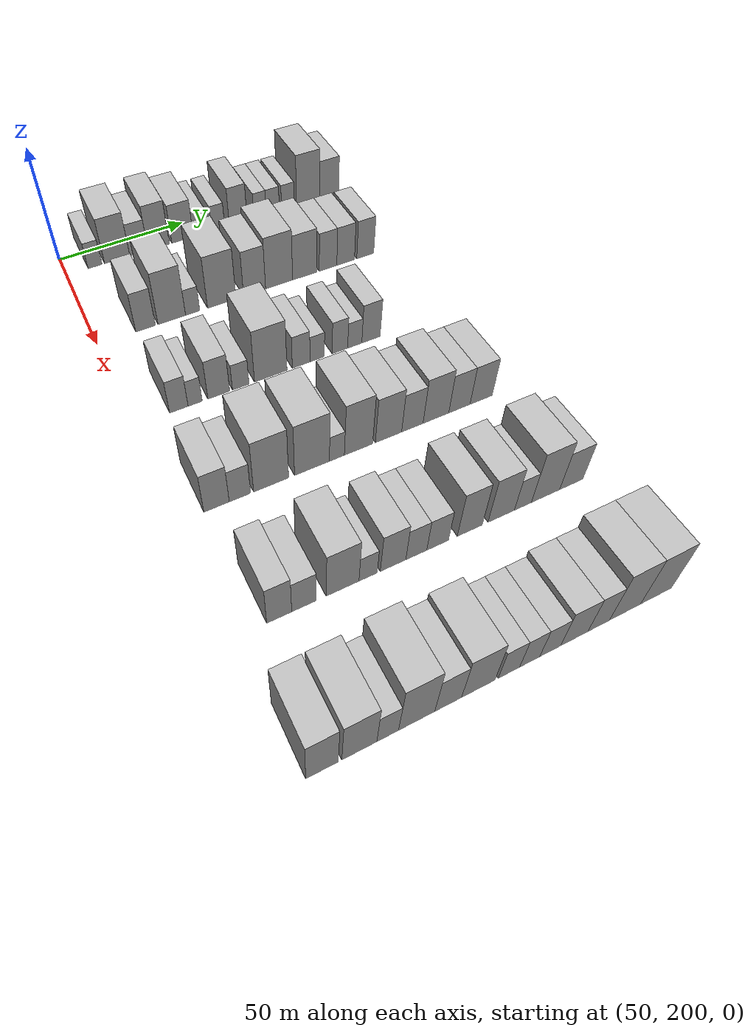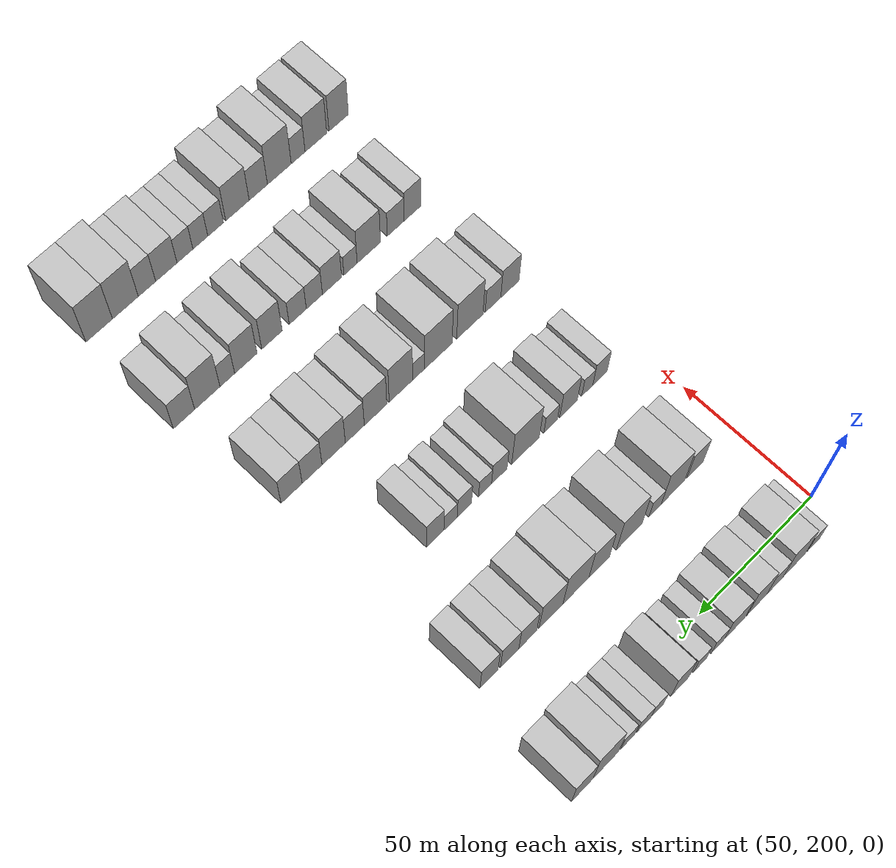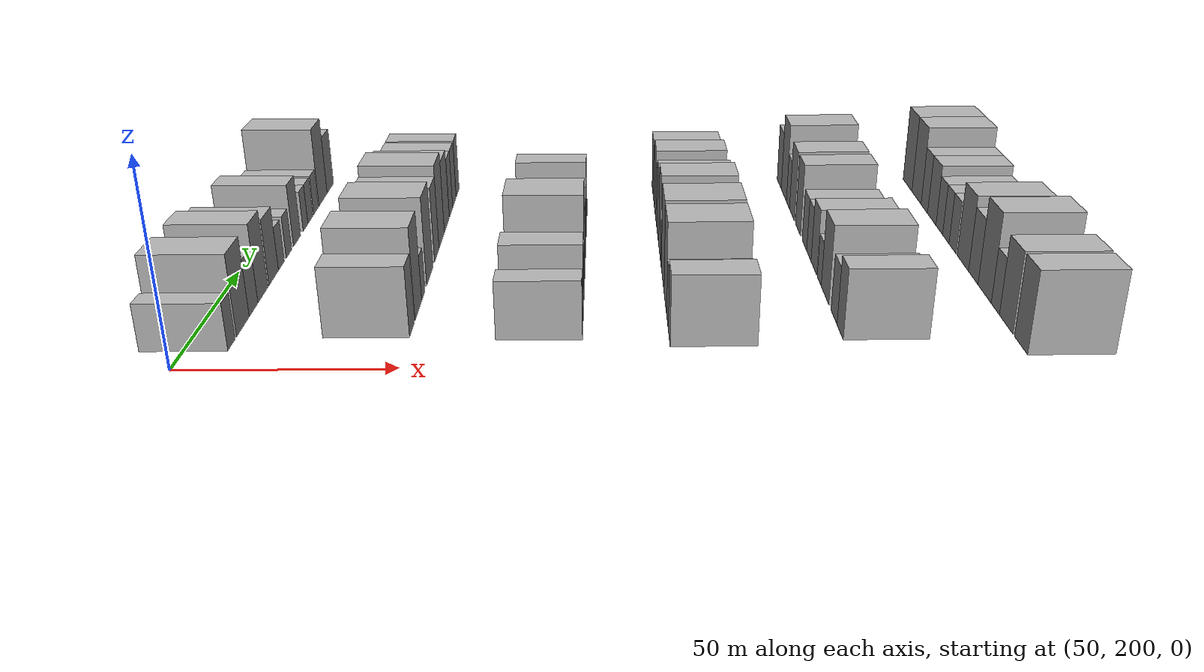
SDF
<sdf version="1.6">
 <world name="default">
  <model name="building_93">
   <static>1</static>
   <pose>50.0000 211.0995 0 0.000000 0.000000 0.000000</pose>
   <link name="link">
    <pose>0 0 6.00 0 0 0</pose>
    <collision name="collision"><geometry><box><size>20.0000 5.4808 12.0000</size></box></geometry></collision>
    <visual name="visual">
     <cast_shadows>0</cast_shadows>
     <geometry><box><size>20.0000 5.4808 12.0000</size></box></geometry>
     <material>
      <script>
       <uri>model://HANNAS_wall/materials/scripts</uri>
       <uri>model://HANNAS_wall/materials/textures</uri>
       <name>vrc/HANNAS_wall</name>
      </script>
     </material>
    </visual>
   </link>
  </model>
  <model name="building_94">
   <static>1</static>
   <pose>50.0000 219.8509 0 0.000000 0.000000 0.000000</pose>
   <link name="link">
    <pose>0 0 10.50 0 0 0</pose>
    <collision name="collision"><geometry><box><size>20.0000 10.0220 21.0000</size></box></geometry></collision>
    <visual name="visual">
     <cast_shadows>0</cast_shadows>
     <geometry><box><size>20.0000 10.0220 21.0000</size></box></geometry>
     <material>
      <script>
       <uri>model://HANNAS_wall/materials/scripts</uri>
       <uri>model://HANNAS_wall/materials/textures</uri>
       <name>vrc/HANNAS_wall</name>
      </script>
     </material>
    </visual>
   </link>
  </model>
  <model name="building_95">
   <static>1</static>
   <pose>50.0000 228.5226 0 0.000000 0.000000 0.000000</pose>
   <link name="link">
    <pose>0 0 7.50 0 0 0</pose>
    <collision name="collision"><geometry><box><size>20.0000 7.3215 15.0000</size></box></geometry></collision>
    <visual name="visual">
     <cast_shadows>0</cast_shadows>
     <geometry><box><size>20.0000 7.3215 15.0000</size></box></geometry>
     <material>
      <script>
       <uri>model://HANNAS_wall/materials/scripts</uri>
       <uri>model://HANNAS_wall/materials/textures</uri>
       <name>vrc/HANNAS_wall</name>
      </script>
     </material>
    </visual>
   </link>
  </model>
  <model name="building_96">
   <static>1</static>
   <pose>50.0000 236.5626 0 0.000000 0.000000 0.000000</pose>
   <link name="link">
    <pose>0 0 10.50 0 0 0</pose>
    <collision name="collision"><geometry><box><size>20.0000 8.7585 21.0000</size></box></geometry></collision>
    <visual name="visual">
     <cast_shadows>0</cast_shadows>
     <geometry><box><size>20.0000 8.7585 21.0000</size></box></geometry>
     <material>
      <script>
       <uri>model://HANNAS_wall/materials/scripts</uri>
       <uri>model://HANNAS_wall/materials/textures</uri>
       <name>vrc/HANNAS_wall</name>
      </script>
     </material>
    </visual>
   </link>
  </model>
  <model name="building_97">
   <static>1</static>
   <pose>50.0000 246.4110 0 0.000000 0.000000 0.000000</pose>
   <link name="link">
    <pose>0 0 9.00 0 0 0</pose>
    <collision name="collision"><geometry><box><size>20.0000 8.9383 18.0000</size></box></geometry></collision>
    <visual name="visual">
     <cast_shadows>0</cast_shadows>
     <geometry><box><size>20.0000 8.9383 18.0000</size></box></geometry>
     <material>
      <script>
       <uri>model://HANNAS_wall/materials/scripts</uri>
       <uri>model://HANNAS_wall/materials/textures</uri>
       <name>vrc/HANNAS_wall</name>
      </script>
     </material>
    </visual>
   </link>
  </model>
  <model name="building_98">
   <static>1</static>
   <pose>50.0000 253.7391 0 0.000000 0.000000 0.000000</pose>
   <link name="link">
    <pose>0 0 6.00 0 0 0</pose>
    <collision name="collision"><geometry><box><size>20.0000 5.7180 12.0000</size></box></geometry></collision>
    <visual name="visual">
     <cast_shadows>0</cast_shadows>
     <geometry><box><size>20.0000 5.7180 12.0000</size></box></geometry>
     <material>
      <script>
       <uri>model://HANNAS_wall/materials/scripts</uri>
       <uri>model://HANNAS_wall/materials/textures</uri>
       <name>vrc/HANNAS_wall</name>
      </script>
     </material>
    </visual>
   </link>
  </model>
  <model name="building_99">
   <static>1</static>
   <pose>50.0000 261.4068 0 0.000000 0.000000 0.000000</pose>
   <link name="link">
    <pose>0 0 6.00 0 0 0</pose>
    <collision name="collision"><geometry><box><size>20.0000 5.6175 12.0000</size></box></geometry></collision>
    <visual name="visual">
     <cast_shadows>0</cast_shadows>
     <geometry><box><size>20.0000 5.6175 12.0000</size></box></geometry>
     <material>
      <script>
       <uri>model://HANNAS_wall/materials/scripts</uri>
       <uri>model://HANNAS_wall/materials/textures</uri>
       <name>vrc/HANNAS_wall</name>
      </script>
     </material>
    </visual>
   </link>
  </model>
  <model name="building_100">
   <static>1</static>
   <pose>50.0000 270.0456 0 0.000000 0.000000 0.000000</pose>
   <link name="link">
    <pose>0 0 9.00 0 0 0</pose>
    <collision name="collision"><geometry><box><size>20.0000 7.6601 18.0000</size></box></geometry></collision>
    <visual name="visual">
     <cast_shadows>0</cast_shadows>
     <geometry><box><size>20.0000 7.6601 18.0000</size></box></geometry>
     <material>
      <script>
       <uri>model://HANNAS_wall/materials/scripts</uri>
       <uri>model://HANNAS_wall/materials/textures</uri>
       <name>vrc/HANNAS_wall</name>
      </script>
     </material>
    </visual>
   </link>
  </model>
  <model name="building_101">
   <static>1</static>
   <pose>50.0000 279.5580 0 0.000000 0.000000 0.000000</pose>
   <link name="link">
    <pose>0 0 6.00 0 0 0</pose>
    <collision name="collision"><geometry><box><size>20.0000 5.3646 12.0000</size></box></geometry></collision>
    <visual name="visual">
     <cast_shadows>0</cast_shadows>
     <geometry><box><size>20.0000 5.3646 12.0000</size></box></geometry>
     <material>
      <script>
       <uri>model://HANNAS_wall/materials/scripts</uri>
       <uri>model://HANNAS_wall/materials/textures</uri>
       <name>vrc/HANNAS_wall</name>
      </script>
     </material>
    </visual>
   </link>
  </model>
  <model name="building_102">
   <static>1</static>
   <pose>50.0000 285.1805 0 0.000000 0.000000 0.000000</pose>
   <link name="link">
    <pose>0 0 6.00 0 0 0</pose>
    <collision name="collision"><geometry><box><size>20.0000 5.8804 12.0000</size></box></geometry></collision>
    <visual name="visual">
     <cast_shadows>0</cast_shadows>
     <geometry><box><size>20.0000 5.8804 12.0000</size></box></geometry>
     <material>
      <script>
       <uri>model://HANNAS_wall/materials/scripts</uri>
       <uri>model://HANNAS_wall/materials/textures</uri>
       <name>vrc/HANNAS_wall</name>
      </script>
     </material>
    </visual>
   </link>
  </model>
  <model name="building_103">
   <static>1</static>
   <pose>50.0000 291.9750 0 0.000000 0.000000 0.000000</pose>
   <link name="link">
    <pose>0 0 6.00 0 0 0</pose>
    <collision name="collision"><geometry><box><size>20.0000 5.7086 12.0000</size></box></geometry></collision>
    <visual name="visual">
     <cast_shadows>0</cast_shadows>
     <geometry><box><size>20.0000 5.7086 12.0000</size></box></geometry>
     <material>
      <script>
       <uri>model://HANNAS_wall/materials/scripts</uri>
       <uri>model://HANNAS_wall/materials/textures</uri>
       <name>vrc/HANNAS_wall</name>
      </script>
     </material>
    </visual>
   </link>
  </model>
  <model name="building_104">
   <static>1</static>
   <pose>50.0000 301.1228 0 0.000000 0.000000 0.000000</pose>
   <link name="link">
    <pose>0 0 12.00 0 0 0</pose>
    <collision name="collision"><geometry><box><size>20.0000 10.5872 24.0000</size></box></geometry></collision>
    <visual name="visual">
     <cast_shadows>0</cast_shadows>
     <geometry><box><size>20.0000 10.5872 24.0000</size></box></geometry>
     <material>
      <script>
       <uri>model://HANNAS_wall/materials/scripts</uri>
       <uri>model://HANNAS_wall/materials/textures</uri>
       <name>vrc/HANNAS_wall</name>
      </script>
     </material>
    </visual>
   </link>
  </model>
  <model name="building_105">
   <static>1</static>
   <pose>50.0000 310.7915 0 0.000000 0.000000 0.000000</pose>
   <link name="link">
    <pose>0 0 9.00 0 0 0</pose>
    <collision name="collision"><geometry><box><size>20.0000 8.7502 18.0000</size></box></geometry></collision>
    <visual name="visual">
     <cast_shadows>0</cast_shadows>
     <geometry><box><size>20.0000 8.7502 18.0000</size></box></geometry>
     <material>
      <script>
       <uri>model://HANNAS_wall/materials/scripts</uri>
       <uri>model://HANNAS_wall/materials/textures</uri>
       <name>vrc/HANNAS_wall</name>
      </script>
     </material>
    </visual>
   </link>
  </model>
  <model name="building_237">
   <static>1</static>
   <pose>90.0000 217.7423 0 0.000000 0.000000 0.000000</pose>
   <link name="link">
    <pose>0 0 9.00 0 0 0</pose>
    <collision name="collision"><geometry><box><size>20.0000 7.2847 18.0000</size></box></geometry></collision>
    <visual name="visual">
     <cast_shadows>0</cast_shadows>
     <geometry><box><size>20.0000 7.2847 18.0000</size></box></geometry>
     <material>
      <script>
       <uri>model://HANNAS_wall/materials/scripts</uri>
       <uri>model://HANNAS_wall/materials/textures</uri>
       <name>vrc/HANNAS_wall</name>
      </script>
     </material>
    </visual>
   </link>
  </model>
  <model name="building_238">
   <static>1</static>
   <pose>90.0000 227.5960 0 0.000000 0.000000 0.000000</pose>
   <link name="link">
    <pose>0 0 12.00 0 0 0</pose>
    <collision name="collision"><geometry><box><size>20.0000 10.4227 24.0000</size></box></geometry></collision>
    <visual name="visual">
     <cast_shadows>0</cast_shadows>
     <geometry><box><size>20.0000 10.4227 24.0000</size></box></geometry>
     <material>
      <script>
       <uri>model://HANNAS_wall/materials/scripts</uri>
       <uri>model://HANNAS_wall/materials/textures</uri>
       <name>vrc/HANNAS_wall</name>
      </script>
     </material>
    </visual>
   </link>
  </model>
  <model name="building_239">
   <static>1</static>
   <pose>90.0000 235.5265 0 0.000000 0.000000 0.000000</pose>
   <link name="link">
    <pose>0 0 6.00 0 0 0</pose>
    <collision name="collision"><geometry><box><size>20.0000 5.4381 12.0000</size></box></geometry></collision>
    <visual name="visual">
     <cast_shadows>0</cast_shadows>
     <geometry><box><size>20.0000 5.4381 12.0000</size></box></geometry>
     <material>
      <script>
       <uri>model://HANNAS_wall/materials/scripts</uri>
       <uri>model://HANNAS_wall/materials/textures</uri>
       <name>vrc/HANNAS_wall</name>
      </script>
     </material>
    </visual>
   </link>
  </model>
  <model name="building_240">
   <static>1</static>
   <pose>90.0000 246.8397 0 0.000000 0.000000 0.000000</pose>
   <link name="link">
    <pose>0 0 12.00 0 0 0</pose>
    <collision name="collision"><geometry><box><size>20.0000 11.1883 24.0000</size></box></geometry></collision>
    <visual name="visual">
     <cast_shadows>0</cast_shadows>
     <geometry><box><size>20.0000 11.1883 24.0000</size></box></geometry>
     <material>
      <script>
       <uri>model://HANNAS_wall/materials/scripts</uri>
       <uri>model://HANNAS_wall/materials/textures</uri>
       <name>vrc/HANNAS_wall</name>
      </script>
     </material>
    </visual>
   </link>
  </model>
  <model name="building_241">
   <static>1</static>
   <pose>90.0000 259.8517 0 0.000000 0.000000 0.000000</pose>
   <link name="link">
    <pose>0 0 10.50 0 0 0</pose>
    <collision name="collision"><geometry><box><size>20.0000 8.8356 21.0000</size></box></geometry></collision>
    <visual name="visual">
     <cast_shadows>0</cast_shadows>
     <geometry><box><size>20.0000 8.8356 21.0000</size></box></geometry>
     <material>
      <script>
       <uri>model://HANNAS_wall/materials/scripts</uri>
       <uri>model://HANNAS_wall/materials/textures</uri>
       <name>vrc/HANNAS_wall</name>
      </script>
     </material>
    </visual>
   </link>
  </model>
  <model name="building_242">
   <static>1</static>
   <pose>90.0000 269.8016 0 0.000000 0.000000 0.000000</pose>
   <link name="link">
    <pose>0 0 12.00 0 0 0</pose>
    <collision name="collision"><geometry><box><size>20.0000 11.0642 24.0000</size></box></geometry></collision>
    <visual name="visual">
     <cast_shadows>0</cast_shadows>
     <geometry><box><size>20.0000 11.0642 24.0000</size></box></geometry>
     <material>
      <script>
       <uri>model://HANNAS_wall/materials/scripts</uri>
       <uri>model://HANNAS_wall/materials/textures</uri>
       <name>vrc/HANNAS_wall</name>
      </script>
     </material>
    </visual>
   </link>
  </model>
  <model name="building_243">
   <static>1</static>
   <pose>90.0000 280.3984 0 0.000000 0.000000 0.000000</pose>
   <link name="link">
    <pose>0 0 10.50 0 0 0</pose>
    <collision name="collision"><geometry><box><size>20.0000 10.1294 21.0000</size></box></geometry></collision>
    <visual name="visual">
     <cast_shadows>0</cast_shadows>
     <geometry><box><size>20.0000 10.1294 21.0000</size></box></geometry>
     <material>
      <script>
       <uri>model://HANNAS_wall/materials/scripts</uri>
       <uri>model://HANNAS_wall/materials/textures</uri>
       <name>vrc/HANNAS_wall</name>
      </script>
     </material>
    </visual>
   </link>
  </model>
  <model name="building_244">
   <static>1</static>
   <pose>90.0000 290.1862 0 0.000000 0.000000 0.000000</pose>
   <link name="link">
    <pose>0 0 9.00 0 0 0</pose>
    <collision name="collision"><geometry><box><size>20.0000 7.4462 18.0000</size></box></geometry></collision>
    <visual name="visual">
     <cast_shadows>0</cast_shadows>
     <geometry><box><size>20.0000 7.4462 18.0000</size></box></geometry>
     <material>
      <script>
       <uri>model://HANNAS_wall/materials/scripts</uri>
       <uri>model://HANNAS_wall/materials/textures</uri>
       <name>vrc/HANNAS_wall</name>
      </script>
     </material>
    </visual>
   </link>
  </model>
  <model name="building_245">
   <static>1</static>
   <pose>90.0000 297.7103 0 0.000000 0.000000 0.000000</pose>
   <link name="link">
    <pose>0 0 9.00 0 0 0</pose>
    <collision name="collision"><geometry><box><size>20.0000 7.6020 18.0000</size></box></geometry></collision>
    <visual name="visual">
     <cast_shadows>0</cast_shadows>
     <geometry><box><size>20.0000 7.6020 18.0000</size></box></geometry>
     <material>
      <script>
       <uri>model://HANNAS_wall/materials/scripts</uri>
       <uri>model://HANNAS_wall/materials/textures</uri>
       <name>vrc/HANNAS_wall</name>
      </script>
     </material>
    </visual>
   </link>
  </model>
  <model name="building_246">
   <static>1</static>
   <pose>90.0000 306.1991 0 0.000000 0.000000 0.000000</pose>
   <link name="link">
    <pose>0 0 9.00 0 0 0</pose>
    <collision name="collision"><geometry><box><size>20.0000 7.3757 18.0000</size></box></geometry></collision>
    <visual name="visual">
     <cast_shadows>0</cast_shadows>
     <geometry><box><size>20.0000 7.3757 18.0000</size></box></geometry>
     <material>
      <script>
       <uri>model://HANNAS_wall/materials/scripts</uri>
       <uri>model://HANNAS_wall/materials/textures</uri>
       <name>vrc/HANNAS_wall</name>
      </script>
     </material>
    </visual>
   </link>
  </model>
  <model name="building_373">
   <static>1</static>
   <pose>130.0000 215.6166 0 0.000000 0.000000 0.000000</pose>
   <link name="link">
    <pose>0 0 7.50 0 0 0</pose>
    <collision name="collision"><geometry><box><size>20.0000 6.4064 15.0000</size></box></geometry></collision>
    <visual name="visual">
     <cast_shadows>0</cast_shadows>
     <geometry><box><size>20.0000 6.4064 15.0000</size></box></geometry>
     <material>
      <script>
       <uri>model://HANNAS_wall/materials/scripts</uri>
       <uri>model://HANNAS_wall/materials/textures</uri>
       <name>vrc/HANNAS_wall</name>
      </script>
     </material>
    </visual>
   </link>
  </model>
  <model name="building_374">
   <static>1</static>
   <pose>130.0000 221.2883 0 0.000000 0.000000 0.000000</pose>
   <link name="link">
    <pose>0 0 6.00 0 0 0</pose>
    <collision name="collision"><geometry><box><size>20.0000 4.9371 12.0000</size></box></geometry></collision>
    <visual name="visual">
     <cast_shadows>0</cast_shadows>
     <geometry><box><size>20.0000 4.9371 12.0000</size></box></geometry>
     <material>
      <script>
       <uri>model://HANNAS_wall/materials/scripts</uri>
       <uri>model://HANNAS_wall/materials/textures</uri>
       <name>vrc/HANNAS_wall</name>
      </script>
     </material>
    </visual>
   </link>
  </model>
  <model name="building_375">
   <static>1</static>
   <pose>130.0000 229.6332 0 0.000000 0.000000 0.000000</pose>
   <link name="link">
    <pose>0 0 9.00 0 0 0</pose>
    <collision name="collision"><geometry><box><size>20.0000 7.7527 18.0000</size></box></geometry></collision>
    <visual name="visual">
     <cast_shadows>0</cast_shadows>
     <geometry><box><size>20.0000 7.7527 18.0000</size></box></geometry>
     <material>
      <script>
       <uri>model://HANNAS_wall/materials/scripts</uri>
       <uri>model://HANNAS_wall/materials/textures</uri>
       <name>vrc/HANNAS_wall</name>
      </script>
     </material>
    </visual>
   </link>
  </model>
  <model name="building_376">
   <static>1</static>
   <pose>130.0000 237.4934 0 0.000000 0.000000 0.000000</pose>
   <link name="link">
    <pose>0 0 6.00 0 0 0</pose>
    <collision name="collision"><geometry><box><size>20.0000 5.9677 12.0000</size></box></geometry></collision>
    <visual name="visual">
     <cast_shadows>0</cast_shadows>
     <geometry><box><size>20.0000 5.9677 12.0000</size></box></geometry>
     <material>
      <script>
       <uri>model://HANNAS_wall/materials/scripts</uri>
       <uri>model://HANNAS_wall/materials/textures</uri>
       <name>vrc/HANNAS_wall</name>
      </script>
     </material>
    </visual>
   </link>
  </model>
  <model name="building_377">
   <static>1</static>
   <pose>130.0000 248.4760 0 0.000000 0.000000 0.000000</pose>
   <link name="link">
    <pose>0 0 12.00 0 0 0</pose>
    <collision name="collision"><geometry><box><size>20.0000 11.9974 24.0000</size></box></geometry></collision>
    <visual name="visual">
     <cast_shadows>0</cast_shadows>
     <geometry><box><size>20.0000 11.9974 24.0000</size></box></geometry>
     <material>
      <script>
       <uri>model://HANNAS_wall/materials/scripts</uri>
       <uri>model://HANNAS_wall/materials/textures</uri>
       <name>vrc/HANNAS_wall</name>
      </script>
     </material>
    </visual>
   </link>
  </model>
  <model name="building_378">
   <static>1</static>
   <pose>130.0000 259.8007 0 0.000000 0.000000 0.000000</pose>
   <link name="link">
    <pose>0 0 7.50 0 0 0</pose>
    <collision name="collision"><geometry><box><size>20.0000 6.6520 15.0000</size></box></geometry></collision>
    <visual name="visual">
     <cast_shadows>0</cast_shadows>
     <geometry><box><size>20.0000 6.6520 15.0000</size></box></geometry>
     <material>
      <script>
       <uri>model://HANNAS_wall/materials/scripts</uri>
       <uri>model://HANNAS_wall/materials/textures</uri>
       <name>vrc/HANNAS_wall</name>
      </script>
     </material>
    </visual>
   </link>
  </model>
  <model name="building_379">
   <static>1</static>
   <pose>130.0000 265.8836 0 0.000000 0.000000 0.000000</pose>
   <link name="link">
    <pose>0 0 6.00 0 0 0</pose>
    <collision name="collision"><geometry><box><size>20.0000 5.5139 12.0000</size></box></geometry></collision>
    <visual name="visual">
     <cast_shadows>0</cast_shadows>
     <geometry><box><size>20.0000 5.5139 12.0000</size></box></geometry>
     <material>
      <script>
       <uri>model://HANNAS_wall/materials/scripts</uri>
       <uri>model://HANNAS_wall/materials/textures</uri>
       <name>vrc/HANNAS_wall</name>
      </script>
     </material>
    </visual>
   </link>
  </model>
  <model name="building_380">
   <static>1</static>
   <pose>130.0000 274.6710 0 0.000000 0.000000 0.000000</pose>
   <link name="link">
    <pose>0 0 7.50 0 0 0</pose>
    <collision name="collision"><geometry><box><size>20.0000 6.0608 15.0000</size></box></geometry></collision>
    <visual name="visual">
     <cast_shadows>0</cast_shadows>
     <geometry><box><size>20.0000 6.0608 15.0000</size></box></geometry>
     <material>
      <script>
       <uri>model://HANNAS_wall/materials/scripts</uri>
       <uri>model://HANNAS_wall/materials/textures</uri>
       <name>vrc/HANNAS_wall</name>
      </script>
     </material>
    </visual>
   </link>
  </model>
  <model name="building_381">
   <static>1</static>
   <pose>130.0000 280.4915 0 0.000000 0.000000 0.000000</pose>
   <link name="link">
    <pose>0 0 6.00 0 0 0</pose>
    <collision name="collision"><geometry><box><size>20.0000 5.5801 12.0000</size></box></geometry></collision>
    <visual name="visual">
     <cast_shadows>0</cast_shadows>
     <geometry><box><size>20.0000 5.5801 12.0000</size></box></geometry>
     <material>
      <script>
       <uri>model://HANNAS_wall/materials/scripts</uri>
       <uri>model://HANNAS_wall/materials/textures</uri>
       <name>vrc/HANNAS_wall</name>
      </script>
     </material>
    </visual>
   </link>
  </model>
  <model name="building_382">
   <static>1</static>
   <pose>130.0000 286.9120 0 0.000000 0.000000 0.000000</pose>
   <link name="link">
    <pose>0 0 9.00 0 0 0</pose>
    <collision name="collision"><geometry><box><size>20.0000 7.2610 18.0000</size></box></geometry></collision>
    <visual name="visual">
     <cast_shadows>0</cast_shadows>
     <geometry><box><size>20.0000 7.2610 18.0000</size></box></geometry>
     <material>
      <script>
       <uri>model://HANNAS_wall/materials/scripts</uri>
       <uri>model://HANNAS_wall/materials/textures</uri>
       <name>vrc/HANNAS_wall</name>
      </script>
     </material>
    </visual>
   </link>
  </model>
  <model name="building_511">
   <static>1</static>
   <pose>170.0000 212.8709 0 0.000000 0.000000 0.000000</pose>
   <link name="link">
    <pose>0 0 9.00 0 0 0</pose>
    <collision name="collision"><geometry><box><size>20.0000 8.1387 18.0000</size></box></geometry></collision>
    <visual name="visual">
     <cast_shadows>0</cast_shadows>
     <geometry><box><size>20.0000 8.1387 18.0000</size></box></geometry>
     <material>
      <script>
       <uri>model://HANNAS_wall/materials/scripts</uri>
       <uri>model://HANNAS_wall/materials/textures</uri>
       <name>vrc/HANNAS_wall</name>
      </script>
     </material>
    </visual>
   </link>
  </model>
  <model name="building_512">
   <static>1</static>
   <pose>170.0000 220.4055 0 0.000000 0.000000 0.000000</pose>
   <link name="link">
    <pose>0 0 7.50 0 0 0</pose>
    <collision name="collision"><geometry><box><size>20.0000 6.9304 15.0000</size></box></geometry></collision>
    <visual name="visual">
     <cast_shadows>0</cast_shadows>
     <geometry><box><size>20.0000 6.9304 15.0000</size></box></geometry>
     <material>
      <script>
       <uri>model://HANNAS_wall/materials/scripts</uri>
       <uri>model://HANNAS_wall/materials/textures</uri>
       <name>vrc/HANNAS_wall</name>
      </script>
     </material>
    </visual>
   </link>
  </model>
  <model name="building_513">
   <static>1</static>
   <pose>170.0000 230.6792 0 0.000000 0.000000 0.000000</pose>
   <link name="link">
    <pose>0 0 12.00 0 0 0</pose>
    <collision name="collision"><geometry><box><size>20.0000 11.6170 24.0000</size></box></geometry></collision>
    <visual name="visual">
     <cast_shadows>0</cast_shadows>
     <geometry><box><size>20.0000 11.6170 24.0000</size></box></geometry>
     <material>
      <script>
       <uri>model://HANNAS_wall/materials/scripts</uri>
       <uri>model://HANNAS_wall/materials/textures</uri>
       <name>vrc/HANNAS_wall</name>
      </script>
     </material>
    </visual>
   </link>
  </model>
  <model name="building_514">
   <static>1</static>
   <pose>170.0000 244.4598 0 0.000000 0.000000 0.000000</pose>
   <link name="link">
    <pose>0 0 12.00 0 0 0</pose>
    <collision name="collision"><geometry><box><size>20.0000 11.9442 24.0000</size></box></geometry></collision>
    <visual name="visual">
     <cast_shadows>0</cast_shadows>
     <geometry><box><size>20.0000 11.9442 24.0000</size></box></geometry>
     <material>
      <script>
       <uri>model://HANNAS_wall/materials/scripts</uri>
       <uri>model://HANNAS_wall/materials/textures</uri>
       <name>vrc/HANNAS_wall</name>
      </script>
     </material>
    </visual>
   </link>
  </model>
  <model name="building_515">
   <static>1</static>
   <pose>170.0000 253.0465 0 0.000000 0.000000 0.000000</pose>
   <link name="link">
    <pose>0 0 6.00 0 0 0</pose>
    <collision name="collision"><geometry><box><size>20.0000 5.2293 12.0000</size></box></geometry></collision>
    <visual name="visual">
     <cast_shadows>0</cast_shadows>
     <geometry><box><size>20.0000 5.2293 12.0000</size></box></geometry>
     <material>
      <script>
       <uri>model://HANNAS_wall/materials/scripts</uri>
       <uri>model://HANNAS_wall/materials/textures</uri>
       <name>vrc/HANNAS_wall</name>
      </script>
     </material>
    </visual>
   </link>
  </model>
  <model name="building_516">
   <static>1</static>
   <pose>170.0000 260.6760 0 0.000000 0.000000 0.000000</pose>
   <link name="link">
    <pose>0 0 12.00 0 0 0</pose>
    <collision name="collision"><geometry><box><size>20.0000 10.0298 24.0000</size></box></geometry></collision>
    <visual name="visual">
     <cast_shadows>0</cast_shadows>
     <geometry><box><size>20.0000 10.0298 24.0000</size></box></geometry>
     <material>
      <script>
       <uri>model://HANNAS_wall/materials/scripts</uri>
       <uri>model://HANNAS_wall/materials/textures</uri>
       <name>vrc/HANNAS_wall</name>
      </script>
     </material>
    </visual>
   </link>
  </model>
  <model name="building_517">
   <static>1</static>
   <pose>170.0000 271.4626 0 0.000000 0.000000 0.000000</pose>
   <link name="link">
    <pose>0 0 10.50 0 0 0</pose>
    <collision name="collision"><geometry><box><size>20.0000 9.5434 21.0000</size></box></geometry></collision>
    <visual name="visual">
     <cast_shadows>0</cast_shadows>
     <geometry><box><size>20.0000 9.5434 21.0000</size></box></geometry>
     <material>
      <script>
       <uri>model://HANNAS_wall/materials/scripts</uri>
       <uri>model://HANNAS_wall/materials/textures</uri>
       <name>vrc/HANNAS_wall</name>
      </script>
     </material>
    </visual>
   </link>
  </model>
  <model name="building_518">
   <static>1</static>
   <pose>170.0000 280.2049 0 0.000000 0.000000 0.000000</pose>
   <link name="link">
    <pose>0 0 9.00 0 0 0</pose>
    <collision name="collision"><geometry><box><size>20.0000 7.9412 18.0000</size></box></geometry></collision>
    <visual name="visual">
     <cast_shadows>0</cast_shadows>
     <geometry><box><size>20.0000 7.9412 18.0000</size></box></geometry>
     <material>
      <script>
       <uri>model://HANNAS_wall/materials/scripts</uri>
       <uri>model://HANNAS_wall/materials/textures</uri>
       <name>vrc/HANNAS_wall</name>
      </script>
     </material>
    </visual>
   </link>
  </model>
  <model name="building_519">
   <static>1</static>
   <pose>170.0000 289.0322 0 0.000000 0.000000 0.000000</pose>
   <link name="link">
    <pose>0 0 10.50 0 0 0</pose>
    <collision name="collision"><geometry><box><size>20.0000 9.7133 21.0000</size></box></geometry></collision>
    <visual name="visual">
     <cast_shadows>0</cast_shadows>
     <geometry><box><size>20.0000 9.7133 21.0000</size></box></geometry>
     <material>
      <script>
       <uri>model://HANNAS_wall/materials/scripts</uri>
       <uri>model://HANNAS_wall/materials/textures</uri>
       <name>vrc/HANNAS_wall</name>
      </script>
     </material>
    </visual>
   </link>
  </model>
  <model name="building_520">
   <static>1</static>
   <pose>170.0000 297.9896 0 0.000000 0.000000 0.000000</pose>
   <link name="link">
    <pose>0 0 9.00 0 0 0</pose>
    <collision name="collision"><geometry><box><size>20.0000 8.2015 18.0000</size></box></geometry></collision>
    <visual name="visual">
     <cast_shadows>0</cast_shadows>
     <geometry><box><size>20.0000 8.2015 18.0000</size></box></geometry>
     <material>
      <script>
       <uri>model://HANNAS_wall/materials/scripts</uri>
       <uri>model://HANNAS_wall/materials/textures</uri>
       <name>vrc/HANNAS_wall</name>
      </script>
     </material>
    </visual>
   </link>
  </model>
  <model name="building_521">
   <static>1</static>
   <pose>170.0000 306.4246 0 0.000000 0.000000 0.000000</pose>
   <link name="link">
    <pose>0 0 9.00 0 0 0</pose>
    <collision name="collision"><geometry><box><size>20.0000 8.6686 18.0000</size></box></geometry></collision>
    <visual name="visual">
     <cast_shadows>0</cast_shadows>
     <geometry><box><size>20.0000 8.6686 18.0000</size></box></geometry>
     <material>
      <script>
       <uri>model://HANNAS_wall/materials/scripts</uri>
       <uri>model://HANNAS_wall/materials/textures</uri>
       <name>vrc/HANNAS_wall</name>
      </script>
     </material>
    </visual>
   </link>
  </model>
  <model name="building_649">
   <static>1</static>
   <pose>210.0000 215.0990 0 0.000000 0.000000 0.000000</pose>
   <link name="link">
    <pose>0 0 9.00 0 0 0</pose>
    <collision name="collision"><geometry><box><size>20.0000 7.4360 18.0000</size></box></geometry></collision>
    <visual name="visual">
     <cast_shadows>0</cast_shadows>
     <geometry><box><size>20.0000 7.4360 18.0000</size></box></geometry>
     <material>
      <script>
       <uri>model://HANNAS_wall/materials/scripts</uri>
       <uri>model://HANNAS_wall/materials/textures</uri>
       <name>vrc/HANNAS_wall</name>
      </script>
     </material>
    </visual>
   </link>
  </model>
  <model name="building_650">
   <static>1</static>
   <pose>210.0000 222.5412 0 0.000000 0.000000 0.000000</pose>
   <link name="link">
    <pose>0 0 7.50 0 0 0</pose>
    <collision name="collision"><geometry><box><size>20.0000 7.4485 15.0000</size></box></geometry></collision>
    <visual name="visual">
     <cast_shadows>0</cast_shadows>
     <geometry><box><size>20.0000 7.4485 15.0000</size></box></geometry>
     <material>
      <script>
       <uri>model://HANNAS_wall/materials/scripts</uri>
       <uri>model://HANNAS_wall/materials/textures</uri>
       <name>vrc/HANNAS_wall</name>
      </script>
     </material>
    </visual>
   </link>
  </model>
  <model name="building_651">
   <static>1</static>
   <pose>210.0000 234.3816 0 0.000000 0.000000 0.000000</pose>
   <link name="link">
    <pose>0 0 10.50 0 0 0</pose>
    <collision name="collision"><geometry><box><size>20.0000 10.2323 21.0000</size></box></geometry></collision>
    <visual name="visual">
     <cast_shadows>0</cast_shadows>
     <geometry><box><size>20.0000 10.2323 21.0000</size></box></geometry>
     <material>
      <script>
       <uri>model://HANNAS_wall/materials/scripts</uri>
       <uri>model://HANNAS_wall/materials/textures</uri>
       <name>vrc/HANNAS_wall</name>
      </script>
     </material>
    </visual>
   </link>
  </model>
  <model name="building_652">
   <static>1</static>
   <pose>210.0000 242.3897 0 0.000000 0.000000 0.000000</pose>
   <link name="link">
    <pose>0 0 6.00 0 0 0</pose>
    <collision name="collision"><geometry><box><size>20.0000 5.7839 12.0000</size></box></geometry></collision>
    <visual name="visual">
     <cast_shadows>0</cast_shadows>
     <geometry><box><size>20.0000 5.7839 12.0000</size></box></geometry>
     <material>
      <script>
       <uri>model://HANNAS_wall/materials/scripts</uri>
       <uri>model://HANNAS_wall/materials/textures</uri>
       <name>vrc/HANNAS_wall</name>
      </script>
     </material>
    </visual>
   </link>
  </model>
  <model name="building_653">
   <static>1</static>
   <pose>210.0000 250.4201 0 0.000000 0.000000 0.000000</pose>
   <link name="link">
    <pose>0 0 9.00 0 0 0</pose>
    <collision name="collision"><geometry><box><size>20.0000 8.2767 18.0000</size></box></geometry></collision>
    <visual name="visual">
     <cast_shadows>0</cast_shadows>
     <geometry><box><size>20.0000 8.2767 18.0000</size></box></geometry>
     <material>
      <script>
       <uri>model://HANNAS_wall/materials/scripts</uri>
       <uri>model://HANNAS_wall/materials/textures</uri>
       <name>vrc/HANNAS_wall</name>
      </script>
     </material>
    </visual>
   </link>
  </model>
  <model name="building_654">
   <static>1</static>
   <pose>210.0000 258.0171 0 0.000000 0.000000 0.000000</pose>
   <link name="link">
    <pose>0 0 7.50 0 0 0</pose>
    <collision name="collision"><geometry><box><size>20.0000 6.9174 15.0000</size></box></geometry></collision>
    <visual name="visual">
     <cast_shadows>0</cast_shadows>
     <geometry><box><size>20.0000 6.9174 15.0000</size></box></geometry>
     <material>
      <script>
       <uri>model://HANNAS_wall/materials/scripts</uri>
       <uri>model://HANNAS_wall/materials/textures</uri>
       <name>vrc/HANNAS_wall</name>
      </script>
     </material>
    </visual>
   </link>
  </model>
  <model name="building_655">
   <static>1</static>
   <pose>210.0000 265.1190 0 0.000000 0.000000 0.000000</pose>
   <link name="link">
    <pose>0 0 7.50 0 0 0</pose>
    <collision name="collision"><geometry><box><size>20.0000 7.2863 15.0000</size></box></geometry></collision>
    <visual name="visual">
     <cast_shadows>0</cast_shadows>
     <geometry><box><size>20.0000 7.2863 15.0000</size></box></geometry>
     <material>
      <script>
       <uri>model://HANNAS_wall/materials/scripts</uri>
       <uri>model://HANNAS_wall/materials/textures</uri>
       <name>vrc/HANNAS_wall</name>
      </script>
     </material>
    </visual>
   </link>
  </model>
  <model name="building_656">
   <static>1</static>
   <pose>210.0000 276.0731 0 0.000000 0.000000 0.000000</pose>
   <link name="link">
    <pose>0 0 10.50 0 0 0</pose>
    <collision name="collision"><geometry><box><size>20.0000 8.6220 21.0000</size></box></geometry></collision>
    <visual name="visual">
     <cast_shadows>0</cast_shadows>
     <geometry><box><size>20.0000 8.6220 21.0000</size></box></geometry>
     <material>
      <script>
       <uri>model://HANNAS_wall/materials/scripts</uri>
       <uri>model://HANNAS_wall/materials/textures</uri>
       <name>vrc/HANNAS_wall</name>
      </script>
     </material>
    </visual>
   </link>
  </model>
  <model name="building_657">
   <static>1</static>
   <pose>210.0000 287.0416 0 0.000000 0.000000 0.000000</pose>
   <link name="link">
    <pose>0 0 10.50 0 0 0</pose>
    <collision name="collision"><geometry><box><size>20.0000 9.3148 21.0000</size></box></geometry></collision>
    <visual name="visual">
     <cast_shadows>0</cast_shadows>
     <geometry><box><size>20.0000 9.3148 21.0000</size></box></geometry>
     <material>
      <script>
       <uri>model://HANNAS_wall/materials/scripts</uri>
       <uri>model://HANNAS_wall/materials/textures</uri>
       <name>vrc/HANNAS_wall</name>
      </script>
     </material>
    </visual>
   </link>
  </model>
  <model name="building_658">
   <static>1</static>
   <pose>210.0000 294.7453 0 0.000000 0.000000 0.000000</pose>
   <link name="link">
    <pose>0 0 7.50 0 0 0</pose>
    <collision name="collision"><geometry><box><size>20.0000 6.0927 15.0000</size></box></geometry></collision>
    <visual name="visual">
     <cast_shadows>0</cast_shadows>
     <geometry><box><size>20.0000 6.0927 15.0000</size></box></geometry>
     <material>
      <script>
       <uri>model://HANNAS_wall/materials/scripts</uri>
       <uri>model://HANNAS_wall/materials/textures</uri>
       <name>vrc/HANNAS_wall</name>
      </script>
     </material>
    </visual>
   </link>
  </model>
  <model name="building_659">
   <static>1</static>
   <pose>210.0000 302.9954 0 0.000000 0.000000 0.000000</pose>
   <link name="link">
    <pose>0 0 12.00 0 0 0</pose>
    <collision name="collision"><geometry><box><size>20.0000 10.4076 24.0000</size></box></geometry></collision>
    <visual name="visual">
     <cast_shadows>0</cast_shadows>
     <geometry><box><size>20.0000 10.4076 24.0000</size></box></geometry>
     <material>
      <script>
       <uri>model://HANNAS_wall/materials/scripts</uri>
       <uri>model://HANNAS_wall/materials/textures</uri>
       <name>vrc/HANNAS_wall</name>
      </script>
     </material>
    </visual>
   </link>
  </model>
  <model name="building_660">
   <static>1</static>
   <pose>210.0000 312.5405 0 0.000000 0.000000 0.000000</pose>
   <link name="link">
    <pose>0 0 9.00 0 0 0</pose>
    <collision name="collision"><geometry><box><size>20.0000 8.6826 18.0000</size></box></geometry></collision>
    <visual name="visual">
     <cast_shadows>0</cast_shadows>
     <geometry><box><size>20.0000 8.6826 18.0000</size></box></geometry>
     <material>
      <script>
       <uri>model://HANNAS_wall/materials/scripts</uri>
       <uri>model://HANNAS_wall/materials/textures</uri>
       <name>vrc/HANNAS_wall</name>
      </script>
     </material>
    </visual>
   </link>
  </model>
  <model name="building_783">
   <static>1</static>
   <pose>250.0000 208.1310 0 0.000000 0.000000 0.000000</pose>
   <link name="link">
    <pose>0 0 10.50 0 0 0</pose>
    <collision name="collision"><geometry><box><size>20.0000 8.7148 21.0000</size></box></geometry></collision>
    <visual name="visual">
     <cast_shadows>0</cast_shadows>
     <geometry><box><size>20.0000 8.7148 21.0000</size></box></geometry>
     <material>
      <script>
       <uri>model://HANNAS_wall/materials/scripts</uri>
       <uri>model://HANNAS_wall/materials/textures</uri>
       <name>vrc/HANNAS_wall</name>
      </script>
     </material>
    </visual>
   </link>
  </model>
  <model name="building_784">
   <static>1</static>
   <pose>250.0000 218.3159 0 0.000000 0.000000 0.000000</pose>
   <link name="link">
    <pose>0 0 10.50 0 0 0</pose>
    <collision name="collision"><geometry><box><size>20.0000 9.6551 21.0000</size></box></geometry></collision>
    <visual name="visual">
     <cast_shadows>0</cast_shadows>
     <geometry><box><size>20.0000 9.6551 21.0000</size></box></geometry>
     <material>
      <script>
       <uri>model://HANNAS_wall/materials/scripts</uri>
       <uri>model://HANNAS_wall/materials/textures</uri>
       <name>vrc/HANNAS_wall</name>
      </script>
     </material>
    </visual>
   </link>
  </model>
  <model name="building_785">
   <static>1</static>
   <pose>250.0000 226.2013 0 0.000000 0.000000 0.000000</pose>
   <link name="link">
    <pose>0 0 7.50 0 0 0</pose>
    <collision name="collision"><geometry><box><size>20.0000 6.1157 15.0000</size></box></geometry></collision>
    <visual name="visual">
     <cast_shadows>0</cast_shadows>
     <geometry><box><size>20.0000 6.1157 15.0000</size></box></geometry>
     <material>
      <script>
       <uri>model://HANNAS_wall/materials/scripts</uri>
       <uri>model://HANNAS_wall/materials/textures</uri>
       <name>vrc/HANNAS_wall</name>
      </script>
     </material>
    </visual>
   </link>
  </model>
  <model name="building_786">
   <static>1</static>
   <pose>250.0000 234.4933 0 0.000000 0.000000 0.000000</pose>
   <link name="link">
    <pose>0 0 12.00 0 0 0</pose>
    <collision name="collision"><geometry><box><size>20.0000 10.4683 24.0000</size></box></geometry></collision>
    <visual name="visual">
     <cast_shadows>0</cast_shadows>
     <geometry><box><size>20.0000 10.4683 24.0000</size></box></geometry>
     <material>
      <script>
       <uri>model://HANNAS_wall/materials/scripts</uri>
       <uri>model://HANNAS_wall/materials/textures</uri>
       <name>vrc/HANNAS_wall</name>
      </script>
     </material>
    </visual>
   </link>
  </model>
  <model name="building_787">
   <static>1</static>
   <pose>250.0000 243.7032 0 0.000000 0.000000 0.000000</pose>
   <link name="link">
    <pose>0 0 9.00 0 0 0</pose>
    <collision name="collision"><geometry><box><size>20.0000 7.9513 18.0000</size></box></geometry></collision>
    <visual name="visual">
     <cast_shadows>0</cast_shadows>
     <geometry><box><size>20.0000 7.9513 18.0000</size></box></geometry>
     <material>
      <script>
       <uri>model://HANNAS_wall/materials/scripts</uri>
       <uri>model://HANNAS_wall/materials/textures</uri>
       <name>vrc/HANNAS_wall</name>
      </script>
     </material>
    </visual>
   </link>
  </model>
  <model name="building_788">
   <static>1</static>
   <pose>250.0000 252.7392 0 0.000000 0.000000 0.000000</pose>
   <link name="link">
    <pose>0 0 10.50 0 0 0</pose>
    <collision name="collision"><geometry><box><size>20.0000 10.1208 21.0000</size></box></geometry></collision>
    <visual name="visual">
     <cast_shadows>0</cast_shadows>
     <geometry><box><size>20.0000 10.1208 21.0000</size></box></geometry>
     <material>
      <script>
       <uri>model://HANNAS_wall/materials/scripts</uri>
       <uri>model://HANNAS_wall/materials/textures</uri>
       <name>vrc/HANNAS_wall</name>
      </script>
     </material>
    </visual>
   </link>
  </model>
  <model name="building_789">
   <static>1</static>
   <pose>250.0000 262.1306 0 0.000000 0.000000 0.000000</pose>
   <link name="link">
    <pose>0 0 7.50 0 0 0</pose>
    <collision name="collision"><geometry><box><size>20.0000 6.6621 15.0000</size></box></geometry></collision>
    <visual name="visual">
     <cast_shadows>0</cast_shadows>
     <geometry><box><size>20.0000 6.6621 15.0000</size></box></geometry>
     <material>
      <script>
       <uri>model://HANNAS_wall/materials/scripts</uri>
       <uri>model://HANNAS_wall/materials/textures</uri>
       <name>vrc/HANNAS_wall</name>
      </script>
     </material>
    </visual>
   </link>
  </model>
  <model name="building_790">
   <static>1</static>
   <pose>250.0000 268.6290 0 0.000000 0.000000 0.000000</pose>
   <link name="link">
    <pose>0 0 7.50 0 0 0</pose>
    <collision name="collision"><geometry><box><size>20.0000 6.3346 15.0000</size></box></geometry></collision>
    <visual name="visual">
     <cast_shadows>0</cast_shadows>
     <geometry><box><size>20.0000 6.3346 15.0000</size></box></geometry>
     <material>
      <script>
       <uri>model://HANNAS_wall/materials/scripts</uri>
       <uri>model://HANNAS_wall/materials/textures</uri>
       <name>vrc/HANNAS_wall</name>
      </script>
     </material>
    </visual>
   </link>
  </model>
  <model name="building_791">
   <static>1</static>
   <pose>250.0000 275.1580 0 0.000000 0.000000 0.000000</pose>
   <link name="link">
    <pose>0 0 7.50 0 0 0</pose>
    <collision name="collision"><geometry><box><size>20.0000 6.7234 15.0000</size></box></geometry></collision>
    <visual name="visual">
     <cast_shadows>0</cast_shadows>
     <geometry><box><size>20.0000 6.7234 15.0000</size></box></geometry>
     <material>
      <script>
       <uri>model://HANNAS_wall/materials/scripts</uri>
       <uri>model://HANNAS_wall/materials/textures</uri>
       <name>vrc/HANNAS_wall</name>
      </script>
     </material>
    </visual>
   </link>
  </model>
  <model name="building_792">
   <static>1</static>
   <pose>250.0000 283.0024 0 0.000000 0.000000 0.000000</pose>
   <link name="link">
    <pose>0 0 9.00 0 0 0</pose>
    <collision name="collision"><geometry><box><size>20.0000 8.9653 18.0000</size></box></geometry></collision>
    <visual name="visual">
     <cast_shadows>0</cast_shadows>
     <geometry><box><size>20.0000 8.9653 18.0000</size></box></geometry>
     <material>
      <script>
       <uri>model://HANNAS_wall/materials/scripts</uri>
       <uri>model://HANNAS_wall/materials/textures</uri>
       <name>vrc/HANNAS_wall</name>
      </script>
     </material>
    </visual>
   </link>
  </model>
  <model name="building_793">
   <static>1</static>
   <pose>250.0000 291.1059 0 0.000000 0.000000 0.000000</pose>
   <link name="link">
    <pose>0 0 9.00 0 0 0</pose>
    <collision name="collision"><geometry><box><size>20.0000 7.2418 18.0000</size></box></geometry></collision>
    <visual name="visual">
     <cast_shadows>0</cast_shadows>
     <geometry><box><size>20.0000 7.2418 18.0000</size></box></geometry>
     <material>
      <script>
       <uri>model://HANNAS_wall/materials/scripts</uri>
       <uri>model://HANNAS_wall/materials/textures</uri>
       <name>vrc/HANNAS_wall</name>
      </script>
     </material>
    </visual>
   </link>
  </model>
  <model name="building_794">
   <static>1</static>
   <pose>250.0000 300.0583 0 0.000000 0.000000 0.000000</pose>
   <link name="link">
    <pose>0 0 12.00 0 0 0</pose>
    <collision name="collision"><geometry><box><size>20.0000 10.6629 24.0000</size></box></geometry></collision>
    <visual name="visual">
     <cast_shadows>0</cast_shadows>
     <geometry><box><size>20.0000 10.6629 24.0000</size></box></geometry>
     <material>
      <script>
       <uri>model://HANNAS_wall/materials/scripts</uri>
       <uri>model://HANNAS_wall/materials/textures</uri>
       <name>vrc/HANNAS_wall</name>
      </script>
     </material>
    </visual>
   </link>
  </model>
  <model name="building_795">
   <static>1</static>
   <pose>250.0000 310.8173 0 0.000000 0.000000 0.000000</pose>
   <link name="link">
    <pose>0 0 12.00 0 0 0</pose>
    <collision name="collision"><geometry><box><size>20.0000 10.8551 24.0000</size></box></geometry></collision>
    <visual name="visual">
     <cast_shadows>0</cast_shadows>
     <geometry><box><size>20.0000 10.8551 24.0000</size></box></geometry>
     <material>
      <script>
       <uri>model://HANNAS_wall/materials/scripts</uri>
       <uri>model://HANNAS_wall/materials/textures</uri>
       <name>vrc/HANNAS_wall</name>
      </script>
     </material>
    </visual>
   </link>
  </model>
 </world>
</sdf>
